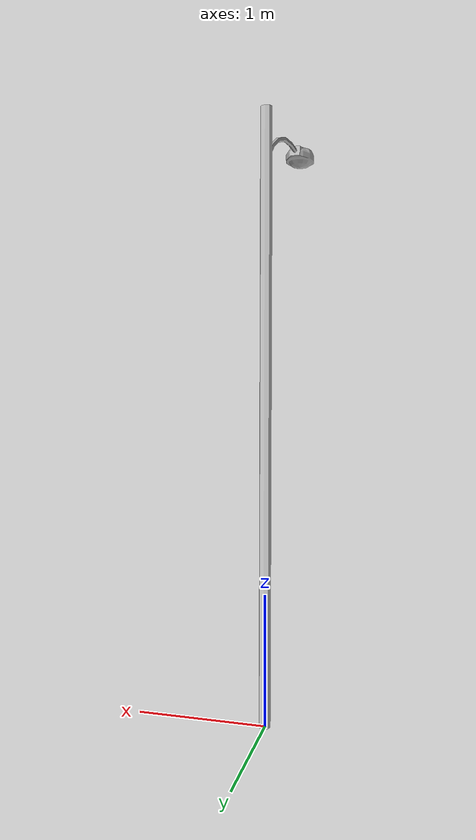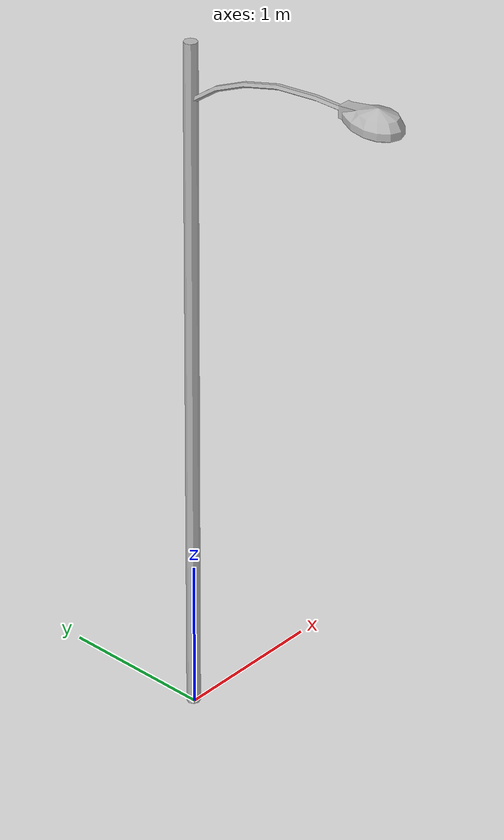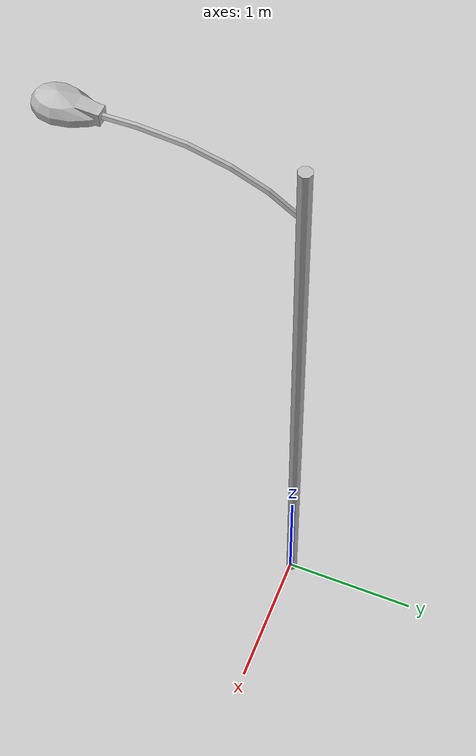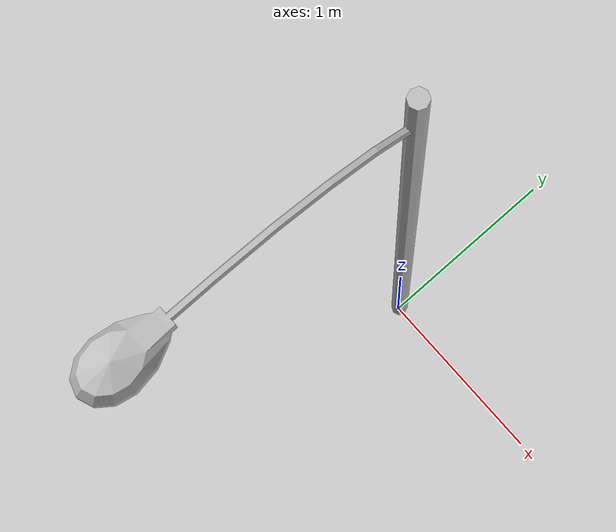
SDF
<?xml version="1.0" ?>
<sdf version="1.5">
  <model name="Lamp Post">
    <static>true</static>
    <link name="link">
      <collision name="collision">
        <geometry>
          <mesh>
            <uri>model://lamp_post/meshes/lamp_post.dae</uri>
            <scale>1.5 1.5 1</scale>
          </mesh>
        </geometry>
      </collision>
      <visual name="visual">
        <geometry>
          <mesh>
            <uri>model://lamp_post/meshes/lamp_post.dae</uri>
            <scale>1.5 1.5 1.5</scale>
          </mesh>
        </geometry>
      </visual>
    </link>
  </model>
</sdf>
